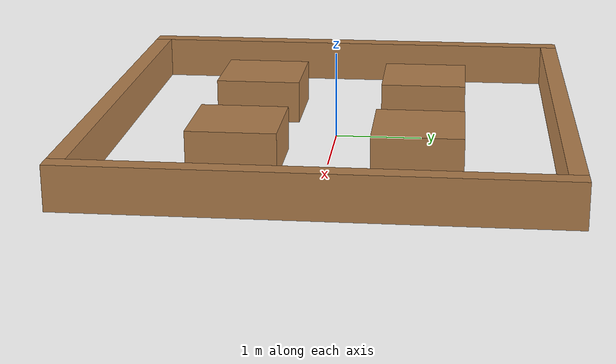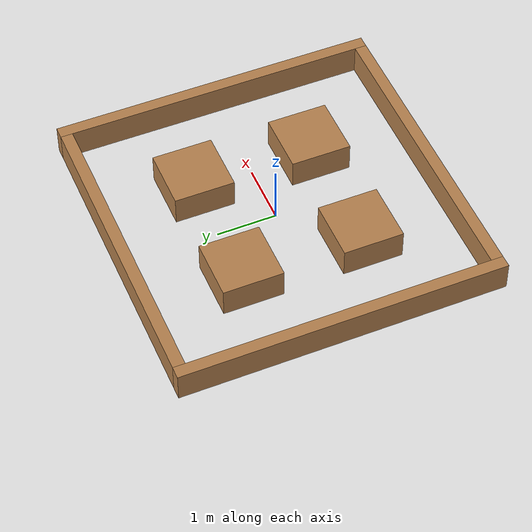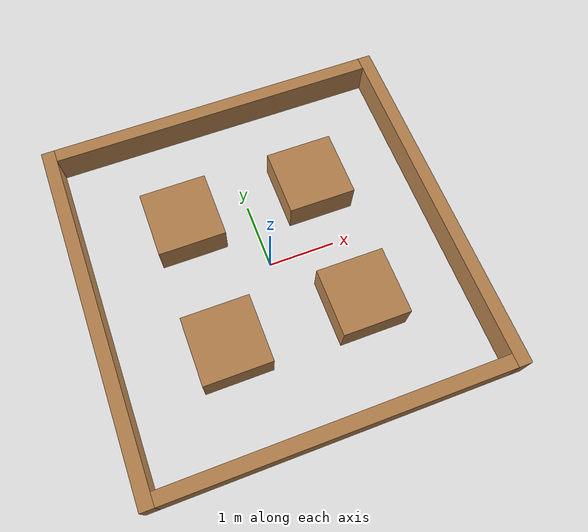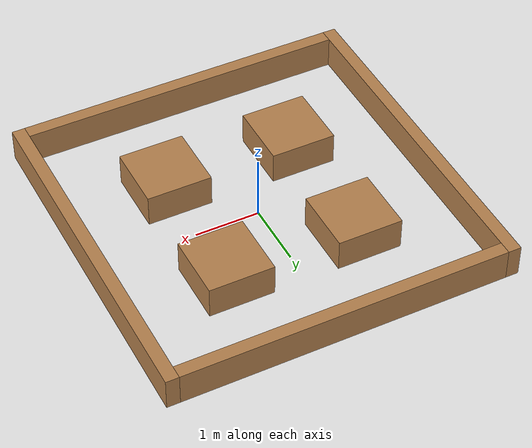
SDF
<?xml version='1.0'?>
<sdf version='1.5'>
  <model name='clobot_test_map'>
    <static>1</static>
    <link name='Wall_EAST'>
      <collision name='Wall_EAST_Collision'>
        <pose>2.6 0 0.25 0 0 0</pose>
        <geometry>
          <box>
            <size>0.2 5.4 0.5</size>
          </box>
        </geometry>
        <surface>
          <friction>
            <ode>
              <mu>1</mu>
              <mu2>1</mu2>
              <fdir1>0 0 0</fdir1>
              <slip1>0</slip1>
              <slip2>0</slip2>
            </ode>
            <torsional>
              <coefficient>1</coefficient>
              <patch_radius>0</patch_radius>
              <surface_radius>0</surface_radius>
              <use_patch_radius>1</use_patch_radius>
              <ode>
                <slip>0</slip>
              </ode>
            </torsional>
          </friction>
          <bounce>
            <restitution_coefficient>0</restitution_coefficient>
            <threshold>1e+06</threshold>
          </bounce>
          <contact>
            <collide_without_contact>0</collide_without_contact>
            <collide_without_contact_bitmask>1</collide_without_contact_bitmask>
            <collide_bitmask>1</collide_bitmask>
            <ode>
              <soft_cfm>0</soft_cfm>
              <soft_erp>0.2</soft_erp>
              <kp>1e+13</kp>
              <kd>1</kd>
              <max_vel>0.01</max_vel>
              <min_depth>0</min_depth>
            </ode>
            <bullet>
              <split_impulse>1</split_impulse>
              <split_impulse_penetration_threshold>-0.01</split_impulse_penetration_threshold>
              <soft_cfm>0</soft_cfm>
              <soft_erp>0.2</soft_erp>
              <kp>1e+13</kp>
              <kd>1</kd>
            </bullet>
          </contact>
        </surface>
      </collision>

      <visual name='Wall_EAST_Visual'>
        <pose>2.6 0 0.25 0 0 0</pose>
        <geometry>
          <box>
            <size>0.2 5.4 0.5</size>
          </box>
        </geometry>
        <material>
          <script>
            <name>Gazebo/WoodFloor</name>
          </script>
        </material>
      </visual>
    </link>

    <link name='Wall_WEST'>
      <collision name='Wall_WEST_Collision'>
        <pose>-2.6 0 0.25 0 0 0</pose>
        <geometry>
          <box>
            <size>0.2 5.4 0.5</size>
          </box>
        </geometry>
        <surface>
          <friction>
            <ode>
              <mu>1</mu>
              <mu2>1</mu2>
              <fdir1>0 0 0</fdir1>
              <slip1>0</slip1>
              <slip2>0</slip2>
            </ode>
            <torsional>
              <coefficient>1</coefficient>
              <patch_radius>0</patch_radius>
              <surface_radius>0</surface_radius>
              <use_patch_radius>1</use_patch_radius>
              <ode>
                <slip>0</slip>
              </ode>
            </torsional>
          </friction>
          <bounce>
            <restitution_coefficient>0</restitution_coefficient>
            <threshold>1e+06</threshold>
          </bounce>
          <contact>
            <collide_without_contact>0</collide_without_contact>
            <collide_without_contact_bitmask>1</collide_without_contact_bitmask>
            <collide_bitmask>1</collide_bitmask>
            <ode>
              <soft_cfm>0</soft_cfm>
              <soft_erp>0.2</soft_erp>
              <kp>1e+13</kp>
              <kd>1</kd>
              <max_vel>0.01</max_vel>
              <min_depth>0</min_depth>
            </ode>
            <bullet>
              <split_impulse>1</split_impulse>
              <split_impulse_penetration_threshold>-0.01</split_impulse_penetration_threshold>
              <soft_cfm>0</soft_cfm>
              <soft_erp>0.2</soft_erp>
              <kp>1e+13</kp>
              <kd>1</kd>
            </bullet>
          </contact>
        </surface>
      </collision>

      <visual name='Wall_SOUTH_Visual'>
        <pose>-2.6 0 0.25 0 0 0</pose>
        <geometry>
          <box>
            <size>0.2 5.4 0.5</size>
          </box>
        </geometry>
        <material>
          <script>
            <name>Gazebo/WoodFloor</name>
          </script>
        </material>
      </visual>
    </link>

    <link name='Wall_SOUTH'>
      <collision name='Wall_SOUTH_Collision'>
        <pose>0 -2.6 0.25 0 0 0</pose>
        <geometry>
          <box>
            <size>5 0.2 0.5</size>
          </box>
        </geometry>
        <surface>
          <friction>
            <ode>
              <mu>1</mu>
              <mu2>1</mu2>
              <fdir1>0 0 0</fdir1>
              <slip1>0</slip1>
              <slip2>0</slip2>
            </ode>
            <torsional>
              <coefficient>1</coefficient>
              <patch_radius>0</patch_radius>
              <surface_radius>0</surface_radius>
              <use_patch_radius>1</use_patch_radius>
              <ode>
                <slip>0</slip>
              </ode>
            </torsional>
          </friction>
          <bounce>
            <restitution_coefficient>0</restitution_coefficient>
            <threshold>1e+06</threshold>
          </bounce>
          <contact>
            <collide_without_contact>0</collide_without_contact>
            <collide_without_contact_bitmask>1</collide_without_contact_bitmask>
            <collide_bitmask>1</collide_bitmask>
            <ode>
              <soft_cfm>0</soft_cfm>
              <soft_erp>0.2</soft_erp>
              <kp>1e+13</kp>
              <kd>1</kd>
              <max_vel>0.01</max_vel>
              <min_depth>0</min_depth>
            </ode>
            <bullet>
              <split_impulse>1</split_impulse>
              <split_impulse_penetration_threshold>-0.01</split_impulse_penetration_threshold>
              <soft_cfm>0</soft_cfm>
              <soft_erp>0.2</soft_erp>
              <kp>1e+13</kp>
              <kd>1</kd>
            </bullet>
          </contact>
        </surface>
      </collision>

      <visual name='Wall_SOUTH_Visual'>
        <pose>0 -2.6 0.25 0 0 0</pose>
        <geometry>
          <box>
            <size>5 0.2 0.5</size>
          </box>
        </geometry>
        <material>
          <script>
            <name>Gazebo/WoodFloor</name>
          </script>
        </material>
      </visual>
    </link>

    <link name='Wall_NORTH'>
      <collision name='Wall_NORTH_Collision'>
        <pose>0 2.6 0.25 0 0 0</pose>
        <geometry>
          <box>
            <size>5 0.2 0.5</size>
          </box>
        </geometry>
        <surface>
          <friction>
            <ode>
              <mu>1</mu>
              <mu2>1</mu2>
              <fdir1>0 0 0</fdir1>
              <slip1>0</slip1>
              <slip2>0</slip2>
            </ode>
            <torsional>
              <coefficient>1</coefficient>
              <patch_radius>0</patch_radius>
              <surface_radius>0</surface_radius>
              <use_patch_radius>1</use_patch_radius>
              <ode>
                <slip>0</slip>
              </ode>
            </torsional>
          </friction>
          <bounce>
            <restitution_coefficient>0</restitution_coefficient>
            <threshold>1e+06</threshold>
          </bounce>
          <contact>
            <collide_without_contact>0</collide_without_contact>
            <collide_without_contact_bitmask>1</collide_without_contact_bitmask>
            <collide_bitmask>1</collide_bitmask>
            <ode>
              <soft_cfm>0</soft_cfm>
              <soft_erp>0.2</soft_erp>
              <kp>1e+13</kp>
              <kd>1</kd>
              <max_vel>0.01</max_vel>
              <min_depth>0</min_depth>
            </ode>
            <bullet>
              <split_impulse>1</split_impulse>
              <split_impulse_penetration_threshold>-0.01</split_impulse_penetration_threshold>
              <soft_cfm>0</soft_cfm>
              <soft_erp>0.2</soft_erp>
              <kp>1e+13</kp>
              <kd>1</kd>
            </bullet>
          </contact>
        </surface>
      </collision>

      <visual name='Wall_NORTH_Visual'>
        <pose>0 2.6 0.25 0 0 0</pose>
        <geometry>
          <box>
            <size>5 0.2 0.5</size>
          </box>
        </geometry>
        <material>
          <script>
            <name>Gazebo/WoodFloor</name>
          </script>
        </material>
      </visual>
    </link>

    <link name='Box1'>
      <collision name='Box1_Collision'>
        <pose>-1 1 0.25 0 0 0</pose>
        <geometry>
          <box>
            <size>1 1 0.5</size>
          </box>
        </geometry>
        <surface>
          <friction>
            <ode>
              <mu>1</mu>
              <mu2>1</mu2>
              <fdir1>0 0 0</fdir1>
              <slip1>0</slip1>
              <slip2>0</slip2>
            </ode>
            <torsional>
              <coefficient>1</coefficient>
              <patch_radius>0</patch_radius>
              <surface_radius>0</surface_radius>
              <use_patch_radius>1</use_patch_radius>
              <ode>
                <slip>0</slip>
              </ode>
            </torsional>
          </friction>
          <bounce>
            <restitution_coefficient>0</restitution_coefficient>
            <threshold>1e+06</threshold>
          </bounce>
          <contact>
            <collide_without_contact>0</collide_without_contact>
            <collide_without_contact_bitmask>1</collide_without_contact_bitmask>
            <collide_bitmask>1</collide_bitmask>
            <ode>
              <soft_cfm>0</soft_cfm>
              <soft_erp>0.2</soft_erp>
              <kp>1e+13</kp>
              <kd>1</kd>
              <max_vel>0.01</max_vel>
              <min_depth>0</min_depth>
            </ode>
            <bullet>
              <split_impulse>1</split_impulse>
              <split_impulse_penetration_threshold>-0.01</split_impulse_penetration_threshold>
              <soft_cfm>0</soft_cfm>
              <soft_erp>0.2</soft_erp>
              <kp>1e+13</kp>
              <kd>1</kd>
            </bullet>
          </contact>
        </surface>
      </collision>

      <visual name='Box1_Visual'>
        <pose>-1 1 0.25 0 0 0</pose>
        <geometry>
          <box>
            <size>1 1 0.5</size>
          </box>
        </geometry>
        <material>
          <script>
            <name>Gazebo/WoodFloor</name>
          </script>
        </material>
      </visual>
    </link>

    <link name='Box2'>
      <collision name='Box2_Collision'>
        <pose>1 1 0.25 0 0 0</pose>
        <geometry>
          <box>
            <size>1 1 0.5</size>
          </box>
        </geometry>
        <surface>
          <friction>
            <ode>
              <mu>1</mu>
              <mu2>1</mu2>
              <fdir1>0 0 0</fdir1>
              <slip1>0</slip1>
              <slip2>0</slip2>
            </ode>
            <torsional>
              <coefficient>1</coefficient>
              <patch_radius>0</patch_radius>
              <surface_radius>0</surface_radius>
              <use_patch_radius>1</use_patch_radius>
              <ode>
                <slip>0</slip>
              </ode>
            </torsional>
          </friction>
          <bounce>
            <restitution_coefficient>0</restitution_coefficient>
            <threshold>1e+06</threshold>
          </bounce>
          <contact>
            <collide_without_contact>0</collide_without_contact>
            <collide_without_contact_bitmask>1</collide_without_contact_bitmask>
            <collide_bitmask>1</collide_bitmask>
            <ode>
              <soft_cfm>0</soft_cfm>
              <soft_erp>0.2</soft_erp>
              <kp>1e+13</kp>
              <kd>1</kd>
              <max_vel>0.01</max_vel>
              <min_depth>0</min_depth>
            </ode>
            <bullet>
              <split_impulse>1</split_impulse>
              <split_impulse_penetration_threshold>-0.01</split_impulse_penetration_threshold>
              <soft_cfm>0</soft_cfm>
              <soft_erp>0.2</soft_erp>
              <kp>1e+13</kp>
              <kd>1</kd>
            </bullet>
          </contact>
        </surface>
      </collision>

      <visual name='Box2_Visual'>
        <pose>1 1 0.25 0 0 0</pose>
        <geometry>
          <box>
            <size>1 1 0.5</size>
          </box>
        </geometry>
        <material>
          <script>
            <name>Gazebo/WoodFloor</name>
          </script>
        </material>
      </visual>
    </link>

    <link name='Box3'>
      <collision name='Box3_Collision'>
        <pose>-1 -1 0.25 0 0 0</pose>
        <geometry>
          <box>
            <size>1 1 0.5</size>
          </box>
        </geometry>
        <surface>
          <friction>
            <ode>
              <mu>1</mu>
              <mu2>1</mu2>
              <fdir1>0 0 0</fdir1>
              <slip1>0</slip1>
              <slip2>0</slip2>
            </ode>
            <torsional>
              <coefficient>1</coefficient>
              <patch_radius>0</patch_radius>
              <surface_radius>0</surface_radius>
              <use_patch_radius>1</use_patch_radius>
              <ode>
                <slip>0</slip>
              </ode>
            </torsional>
          </friction>
          <bounce>
            <restitution_coefficient>0</restitution_coefficient>
            <threshold>1e+06</threshold>
          </bounce>
          <contact>
            <collide_without_contact>0</collide_without_contact>
            <collide_without_contact_bitmask>1</collide_without_contact_bitmask>
            <collide_bitmask>1</collide_bitmask>
            <ode>
              <soft_cfm>0</soft_cfm>
              <soft_erp>0.2</soft_erp>
              <kp>1e+13</kp>
              <kd>1</kd>
              <max_vel>0.01</max_vel>
              <min_depth>0</min_depth>
            </ode>
            <bullet>
              <split_impulse>1</split_impulse>
              <split_impulse_penetration_threshold>-0.01</split_impulse_penetration_threshold>
              <soft_cfm>0</soft_cfm>
              <soft_erp>0.2</soft_erp>
              <kp>1e+13</kp>
              <kd>1</kd>
            </bullet>
          </contact>
        </surface>
      </collision>

      <visual name='Box3_Visual'>
        <pose>-1 -1 0.25 0 0 0</pose>
        <geometry>
          <box>
            <size>1 1 0.5</size>
          </box>
        </geometry>
        <material>
          <script>
            <name>Gazebo/WoodFloor</name>
          </script>
        </material>
      </visual>
    </link>

    <link name='Box4'>
      <collision name='Box4_Collision'>
        <pose>1 -1 0.25 0 0 0</pose>
        <geometry>
          <box>
            <size>1 1 0.5</size>
          </box>
        </geometry>
        <surface>
          <friction>
            <ode>
              <mu>1</mu>
              <mu2>1</mu2>
              <fdir1>0 0 0</fdir1>
              <slip1>0</slip1>
              <slip2>0</slip2>
            </ode>
            <torsional>
              <coefficient>1</coefficient>
              <patch_radius>0</patch_radius>
              <surface_radius>0</surface_radius>
              <use_patch_radius>1</use_patch_radius>
              <ode>
                <slip>0</slip>
              </ode>
            </torsional>
          </friction>
          <bounce>
            <restitution_coefficient>0</restitution_coefficient>
            <threshold>1e+06</threshold>
          </bounce>
          <contact>
            <collide_without_contact>0</collide_without_contact>
            <collide_without_contact_bitmask>1</collide_without_contact_bitmask>
            <collide_bitmask>1</collide_bitmask>
            <ode>
              <soft_cfm>0</soft_cfm>
              <soft_erp>0.2</soft_erp>
              <kp>1e+13</kp>
              <kd>1</kd>
              <max_vel>0.01</max_vel>
              <min_depth>0</min_depth>
            </ode>
            <bullet>
              <split_impulse>1</split_impulse>
              <split_impulse_penetration_threshold>-0.01</split_impulse_penetration_threshold>
              <soft_cfm>0</soft_cfm>
              <soft_erp>0.2</soft_erp>
              <kp>1e+13</kp>
              <kd>1</kd>
            </bullet>
          </contact>
        </surface>
      </collision>

      <visual name='Box4_Visual'>
        <pose>1 -1 0.25 0 0 0</pose>
        <geometry>
          <box>
            <size>1 1 0.5</size>
          </box>
        </geometry>
        <material>
          <script>
            <name>Gazebo/WoodFloor</name>
          </script>
        </material>
      </visual>
    </link>

  </model>
</sdf>
